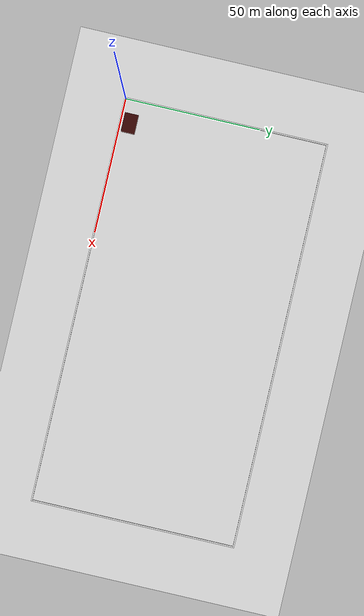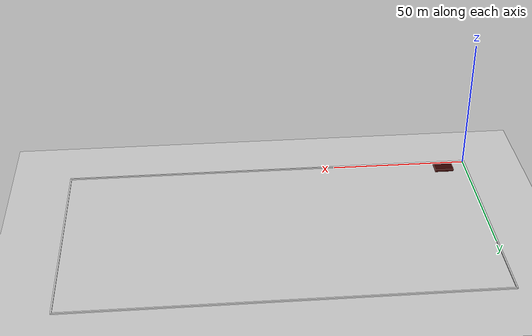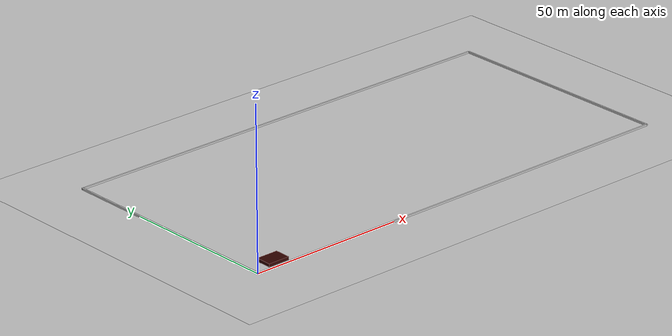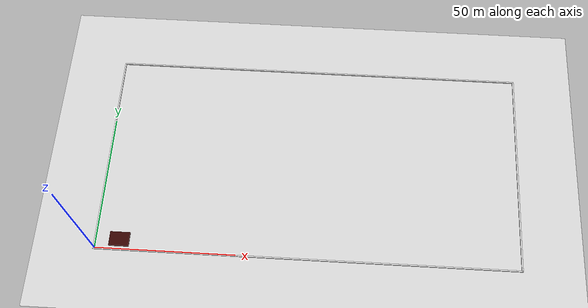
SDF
<?xml version="1.0"?>
<sdf version="1.7">
    <world name="world2">
        <light type="directional" name="sun">
            <cast_shadows>true</cast_shadows>
            <pose>0 0 10 0 0 0</pose>
            <diffuse>0.8 0.8 0.8 1</diffuse>
            <specular>0.2 0.2 0.2 1</specular>
            <attenuation>
                <range>1000</range>
                <constant>0.9</constant>
                <linear>0.01</linear>
                <quadratic>0.001</quadratic>
            </attenuation>
            <direction>-0.5 0.1 -0.9</direction>
        </light>

        <model name="ground_plane">
            <static>true</static>
            <link name="link">
                <collision name="collision">
                    <geometry>
                        <plane>
                            <normal>0 0 1</normal>
                        </plane>
                    </geometry>
                </collision>
                <visual name="visual">
                    <geometry>
                        <plane>
                            <normal>0 0 1</normal>
                            <size>100 100</size>
                        </plane>
                    </geometry>
                    <material>
                        <ambient>0.8 0.8 0.8 1</ambient>
                        <diffuse>0.8 0.8 0.8 1</diffuse>
                        <specular>0.8 0.8 0.8 1</specular>
                    </material>
                </visual>
            </link>
        </model>
        <model name="obstacle1">
        <static>true</static>
        <pose>8.5 3.5 0.5 0 0 0</pose>
        <link name="link">
            <collision name="collision">
            <geometry>
                <box>
                <size>7.0 5.0 1</size>
                </box>
            </geometry>
            </collision>
            <visual name="visual">
            <geometry>
                <box>
                <size>7.0 5.0 1</size>
                </box>
            </geometry>
            <material>
                <ambient>0.1 0.1 0.1 1</ambient>
                <diffuse>0.2 0.01 0 1</diffuse>
                <specular>0.2 0.01 0 1</specular>
            </material>
            </visual>
        </link>
        </model>
        <model name="bottom_wall">
        <static>true</static>
        <pose>75.0 -0.25 0.25 0 0 0</pose>
        <link name="link">
            <collision name="collision">
            <geometry>
                <box>
                <size>151.0 0.5 0.5</size>
                </box>
            </geometry>
            </collision>
            <visual name="visual">
            <geometry>
                <box>
                <size>151.0 0.5 0.5</size>
                </box>
            </geometry>
            <material>
                <ambient>0.8 0.8 0.8 1</ambient>
                <diffuse>0.8 0.8 0.8 1</diffuse>
                <specular>0 0.02 0.1 1</specular>
            </material>
            </visual>
        </link>
        </model>
        <model name="top_wall">
        <static>true</static>
        <pose>75.0 75.25 0.25 0 0 0</pose>
        <link name="link">
            <collision name="collision">
            <geometry>
                <box>
                <size>151.0 0.5 0.5</size>
                </box>
            </geometry>
            </collision>
            <visual name="visual">
            <geometry>
                <box>
                <size>151.0 0.5 0.5</size>
                </box>
            </geometry>
            <material>
                <ambient>0.8 0.8 0.8 1</ambient>
                <diffuse>0.8 0.8 0.8 1</diffuse>
                <specular>0 0.02 0.1 1</specular>
            </material>
            </visual>
        </link>
        </model>
        <model name="left_wall">
        <static>true</static>
        <pose>-0.25 37.5 0.25 0 0 0</pose>
        <link name="link">
            <collision name="collision">
            <geometry>
                <box>
                <size>0.5 76.0 0.5</size>
                </box>
            </geometry>
            </collision>
            <visual name="visual">
            <geometry>
                <box>
                <size>0.5 76.0 0.5</size>
                </box>
            </geometry>
            <material>
                <ambient>0.8 0.8 0.8 1</ambient>
                <diffuse>0.8 0.8 0.8 1</diffuse>
                <specular>0 0.02 0.1 1</specular>
            </material>
            </visual>
        </link>
        </model>
        <model name="right_wall">
        <static>true</static>
        <pose>150.25 37.5 0.25 0 0 0</pose>
        <link name="link">
            <collision name="collision">
            <geometry>
                <box>
                <size>0.5 76.0 0.5</size>
                </box>
            </geometry>
            </collision>
            <visual name="visual">
            <geometry>
                <box>
                <size>0.5 76.0 0.5</size>
                </box>
            </geometry>
            <material>
                <ambient>0.8 0.8 0.8 1</ambient>
                <diffuse>0.8 0.8 0.8 1</diffuse>
                <specular>0 0.02 0.1 1</specular>
            </material>
            </visual>
        </link>
        </model>
    </world>
</sdf>
